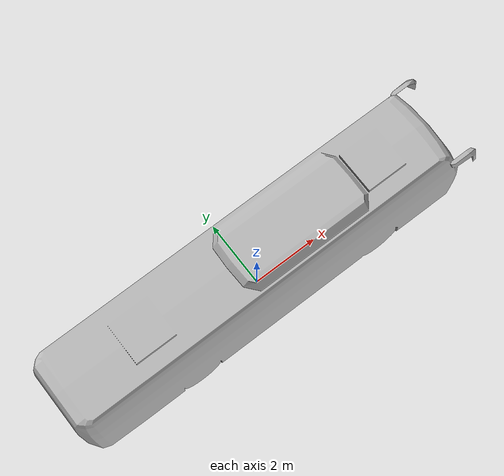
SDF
<?xml version="1.0" ?>
<sdf version="1.6">
    <model name="bus">
        <static>true</static>
        <link name="link">
            <collision name="collision">
                <pose>0 0 0 0 0 1.57079632679</pose>
                <geometry>
                    <mesh>
                        <scale>0.01 0.01 0.01</scale>
                        <uri>model://bus/meshes/bus.obj</uri>
                    </mesh>
                </geometry>
            </collision>
            <visual name="visual">
                <pose>0 0 0 0 0 1.57079632679</pose>
                <geometry>
                    <mesh>
                        <scale>0.01 0.01 0.01</scale>
                        <uri>model://bus/meshes/bus.obj</uri>
                    </mesh>
                </geometry>
            </visual>
        </link>
    </model>
</sdf>
